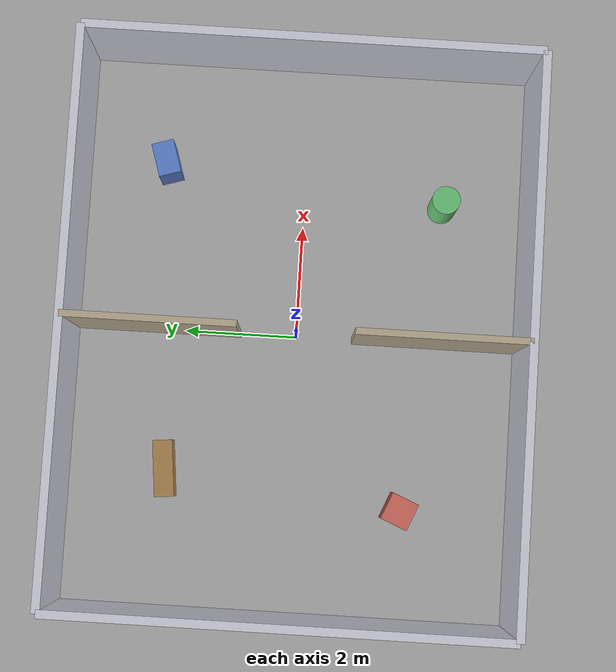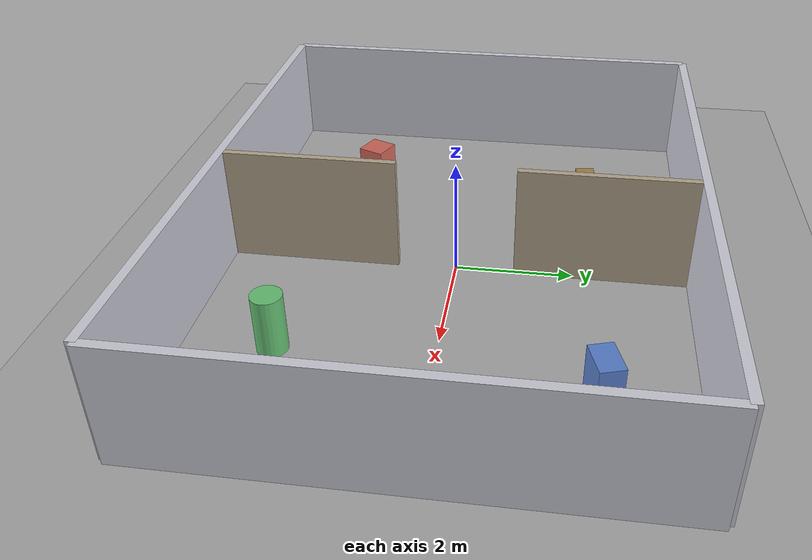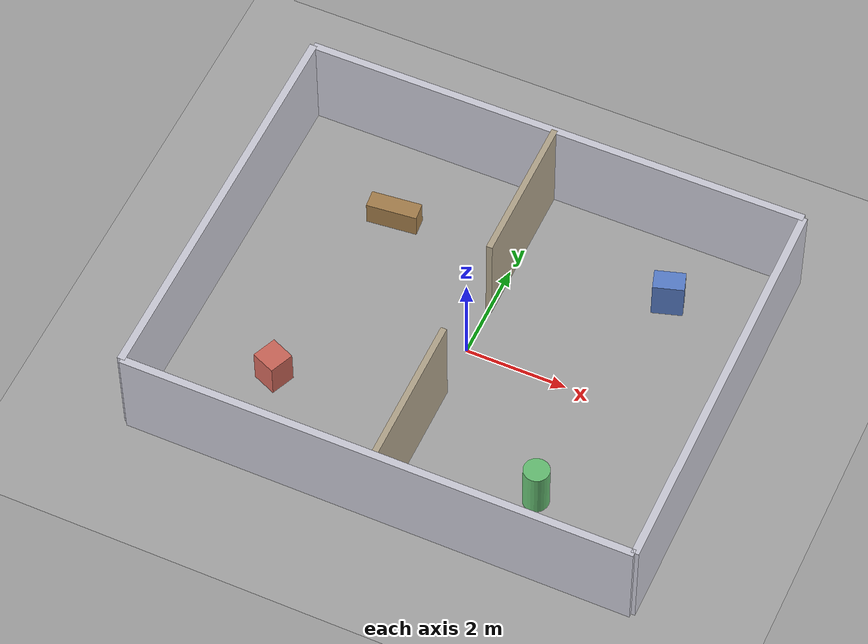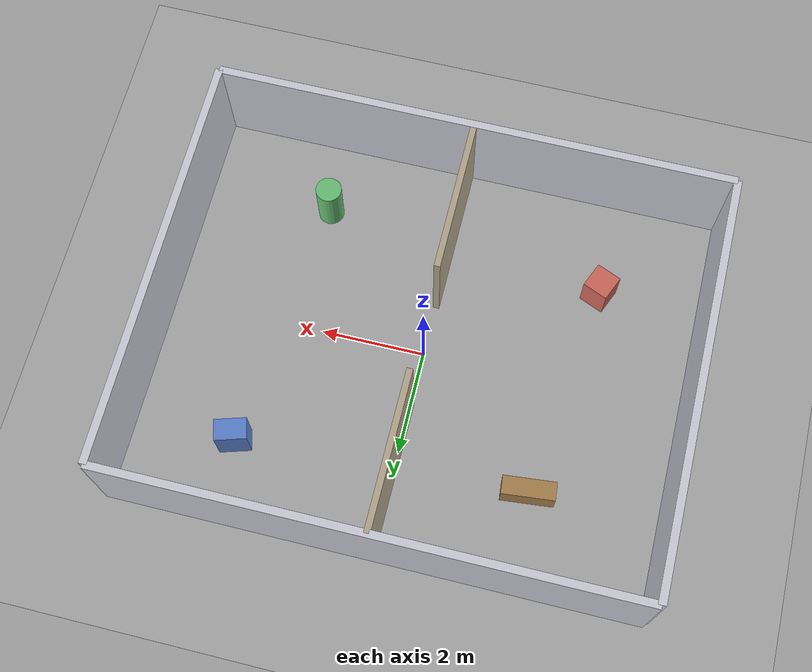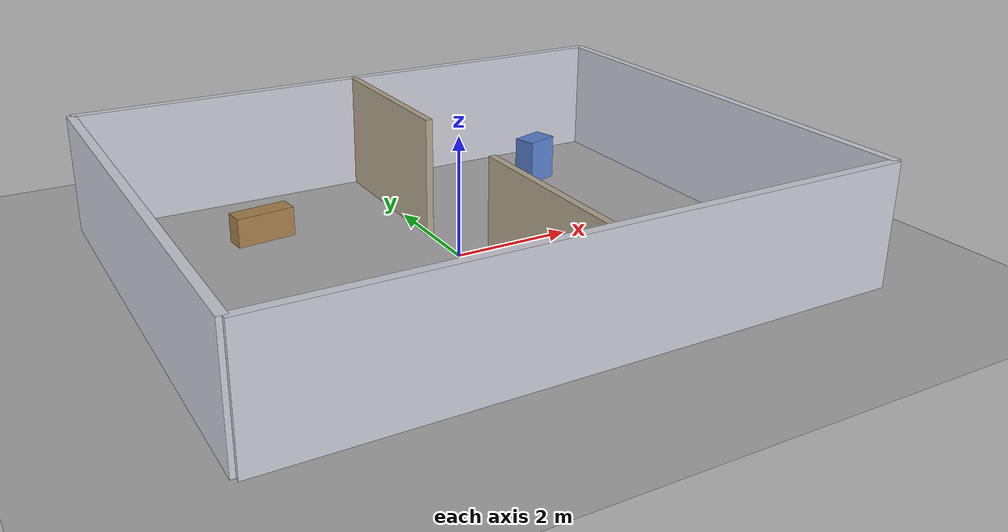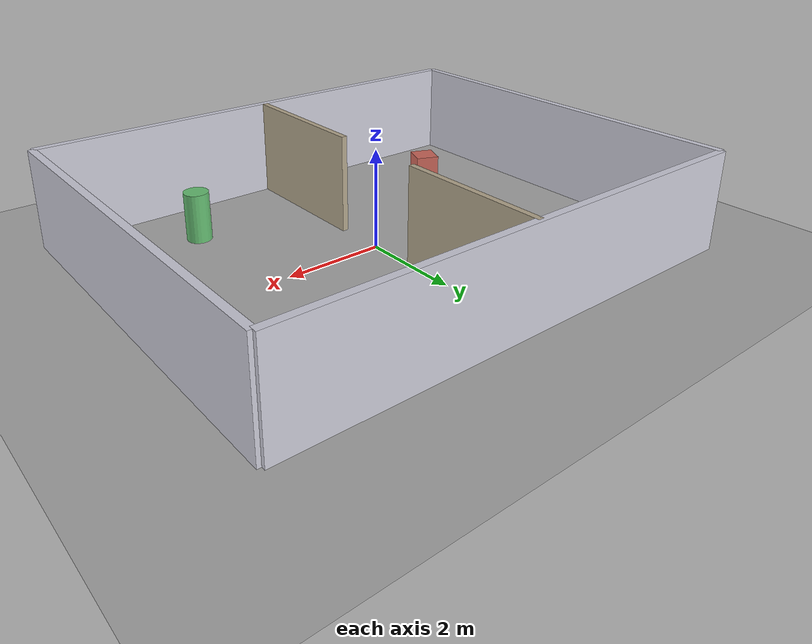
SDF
<?xml version="1.0" ?>
<sdf version="1.9">
  <world name="tc_indoor">
    <physics name="1ms" type="ignored">
      <max_step_size>0.001</max_step_size>
      <real_time_factor>1.0</real_time_factor>
    </physics>

    <plugin filename="gz-sim-physics-system" name="gz::sim::systems::Physics"/>
    <plugin filename="gz-sim-user-commands-system" name="gz::sim::systems::UserCommands"/>
    <plugin filename="gz-sim-scene-broadcaster-system" name="gz::sim::systems::SceneBroadcaster"/>
    <plugin filename="gz-sim-sensors-system" name="gz::sim::systems::Sensors">
      <render_engine>ogre2</render_engine>
    </plugin>
    <plugin filename="gz-sim-imu-system" name="gz::sim::systems::Imu"/>

    <light type="directional" name="sun">
      <cast_shadows>true</cast_shadows>
      <pose>0 0 10 0 0 0</pose>
      <diffuse>0.9 0.9 0.85 1</diffuse>
      <specular>0.3 0.3 0.3 1</specular>
      <attenuation>
        <range>1000</range>
        <constant>0.9</constant>
        <linear>0.01</linear>
        <quadratic>0.001</quadratic>
      </attenuation>
      <direction>-0.3 0.2 -0.9</direction>
    </light>

    <model name="ground_plane">
      <static>true</static>
      <link name="link">
        <collision name="collision">
          <geometry>
            <plane>
              <normal>0 0 1</normal>
              <size>40 40</size>
            </plane>
          </geometry>
          <surface>
            <friction>
              <ode>
                <mu>100</mu>
                <mu2>80</mu2>
              </ode>
              <bullet>
                <friction>1.0</friction>
                <friction2>0.8</friction2>
                <rolling_friction>0.15</rolling_friction>
              </bullet>
            </friction>
          </surface>
        </collision>
        <visual name="visual">
          <geometry>
            <plane>
              <normal>0 0 1</normal>
              <size>40 40</size>
            </plane>
          </geometry>
          <material>
            <ambient>0.55 0.55 0.55 1</ambient>
            <diffuse>0.65 0.65 0.65 1</diffuse>
          </material>
        </visual>
      </link>
    </model>

    <!-- Outer walls: 10x8 m room -->
    <model name="wall_north">
      <static>true</static>
      <pose>0 4 1.0 0 0 0</pose>
      <link name="link">
        <collision name="c"><geometry><box><size>10 0.15 2</size></box></geometry></collision>
        <visual name="v">
          <geometry><box><size>10 0.15 2</size></box></geometry>
          <material><ambient>0.7 0.7 0.75 1</ambient><diffuse>0.8 0.8 0.85 1</diffuse></material>
        </visual>
      </link>
    </model>
    <model name="wall_south">
      <static>true</static>
      <pose>0 -4 1.0 0 0 0</pose>
      <link name="link">
        <collision name="c"><geometry><box><size>10 0.15 2</size></box></geometry></collision>
        <visual name="v">
          <geometry><box><size>10 0.15 2</size></box></geometry>
          <material><ambient>0.7 0.7 0.75 1</ambient><diffuse>0.8 0.8 0.85 1</diffuse></material>
        </visual>
      </link>
    </model>
    <model name="wall_east">
      <static>true</static>
      <pose>5 0 1.0 0 0 0</pose>
      <link name="link">
        <collision name="c"><geometry><box><size>0.15 8 2</size></box></geometry></collision>
        <visual name="v">
          <geometry><box><size>0.15 8 2</size></box></geometry>
          <material><ambient>0.7 0.7 0.75 1</ambient><diffuse>0.8 0.8 0.85 1</diffuse></material>
        </visual>
      </link>
    </model>
    <model name="wall_west">
      <static>true</static>
      <pose>-5 0 1.0 0 0 0</pose>
      <link name="link">
        <collision name="c"><geometry><box><size>0.15 8 2</size></box></geometry></collision>
        <visual name="v">
          <geometry><box><size>0.15 8 2</size></box></geometry>
          <material><ambient>0.7 0.7 0.75 1</ambient><diffuse>0.8 0.8 0.85 1</diffuse></material>
        </visual>
      </link>
    </model>

    <!-- Interior partition with doorway gap -->
    <model name="partition_a">
      <static>true</static>
      <pose>0 2.5 1.0 0 0 0</pose>
      <link name="link">
        <collision name="c"><geometry><box><size>0.12 3 2</size></box></geometry></collision>
        <visual name="v">
          <geometry><box><size>0.12 3 2</size></box></geometry>
          <material><ambient>0.6 0.55 0.5 1</ambient><diffuse>0.7 0.65 0.55 1</diffuse></material>
        </visual>
      </link>
    </model>
    <model name="partition_b">
      <static>true</static>
      <pose>0 -2.5 1.0 0 0 0</pose>
      <link name="link">
        <collision name="c"><geometry><box><size>0.12 3 2</size></box></geometry></collision>
        <visual name="v">
          <geometry><box><size>0.12 3 2</size></box></geometry>
          <material><ambient>0.6 0.55 0.5 1</ambient><diffuse>0.7 0.65 0.55 1</diffuse></material>
        </visual>
      </link>
    </model>

    <!-- Furniture / landmarks for SLAM -->
    <model name="box_1">
      <static>true</static>
      <pose>3 2.5 0.4 0 0 0.3</pose>
      <link name="link">
        <collision name="c"><geometry><box><size>0.6 0.4 0.8</size></box></geometry></collision>
        <visual name="v">
          <geometry><box><size>0.6 0.4 0.8</size></box></geometry>
          <material><ambient>0.3 0.45 0.7 1</ambient><diffuse>0.35 0.5 0.8 1</diffuse></material>
        </visual>
      </link>
    </model>
    <model name="box_2">
      <static>true</static>
      <pose>-3 -2 0.35 0 0 -0.4</pose>
      <link name="link">
        <collision name="c"><geometry><box><size>0.5 0.5 0.7</size></box></geometry></collision>
        <visual name="v">
          <geometry><box><size>0.5 0.5 0.7</size></box></geometry>
          <material><ambient>0.7 0.35 0.3 1</ambient><diffuse>0.8 0.4 0.35 1</diffuse></material>
        </visual>
      </link>
    </model>
    <model name="cylinder_1">
      <static>true</static>
      <pose>2.5 -2.5 0.5 0 0 0</pose>
      <link name="link">
        <collision name="c"><geometry><cylinder><radius>0.25</radius><length>1.0</length></cylinder></geometry></collision>
        <visual name="v">
          <geometry><cylinder><radius>0.25</radius><length>1.0</length></cylinder></geometry>
          <material><ambient>0.35 0.65 0.4 1</ambient><diffuse>0.4 0.75 0.45 1</diffuse></material>
        </visual>
      </link>
    </model>
    <model name="box_3">
      <static>true</static>
      <pose>-2.5 2.2 0.25 0 0 0.1</pose>
      <link name="link">
        <collision name="c"><geometry><box><size>1.0 0.35 0.5</size></box></geometry></collision>
        <visual name="v">
          <geometry><box><size>1.0 0.35 0.5</size></box></geometry>
          <material><ambient>0.55 0.4 0.25 1</ambient><diffuse>0.65 0.5 0.3 1</diffuse></material>
        </visual>
      </link>
    </model>

  </world>
</sdf>
